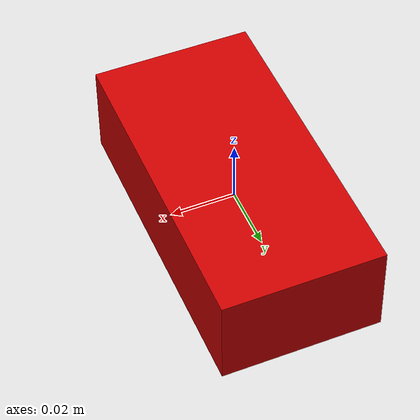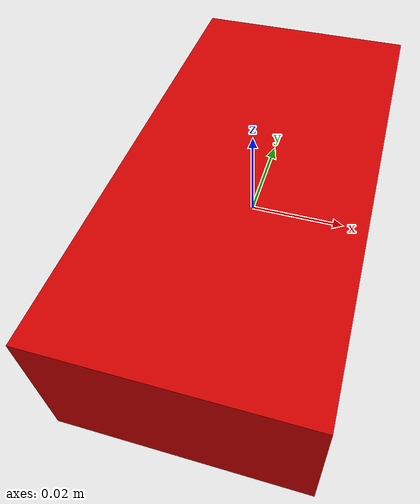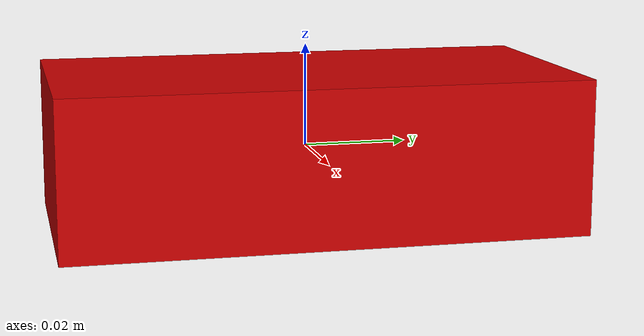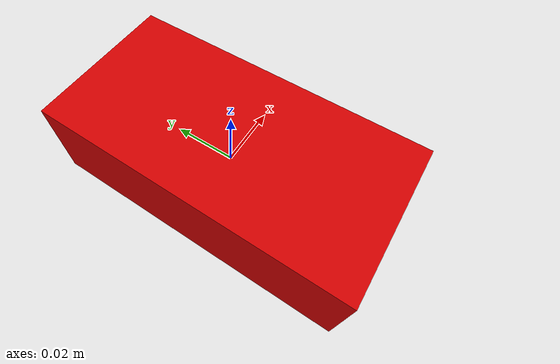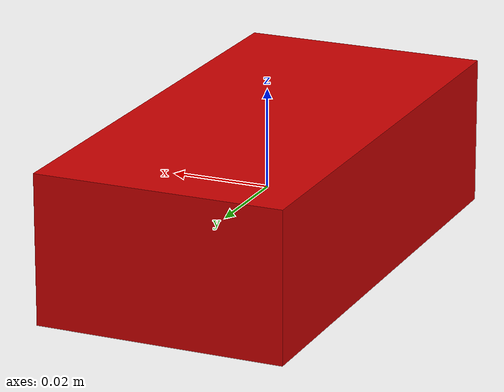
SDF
<?xml version='1.0'?>
<sdf version='1.6'>

    <model name='brick'>
        <link name='link_0'>
            <pose>0 0 0 0 0 0</pose>
            <inertial>
                <inertia>
                    <ixx>0.000091</ixx>
                    <ixy>0</ixy>
                    <ixz>0</ixz>
                    <iyy>0.000104</iyy>
                    <iyz>0</iyz>
                    <izz>0.000028</izz>
                </inertia>
                <mass>0.1</mass>
            </inertial>
            <collision name='collision'>
                <geometry>
                    <box>
                        <size>0.05 0.1 0.03</size>
                    </box>
                </geometry>
            </collision>
            <visual name='visual'>
                <geometry>
                    <box>
                        <size>0.05 0.1 0.03</size>
                    </box>
                </geometry>
                <material>
                    <ambient>0.8 0 0 1</ambient>
                </material>
            </visual>
            <gravity>1</gravity>
        </link>
    </model>
</sdf>
